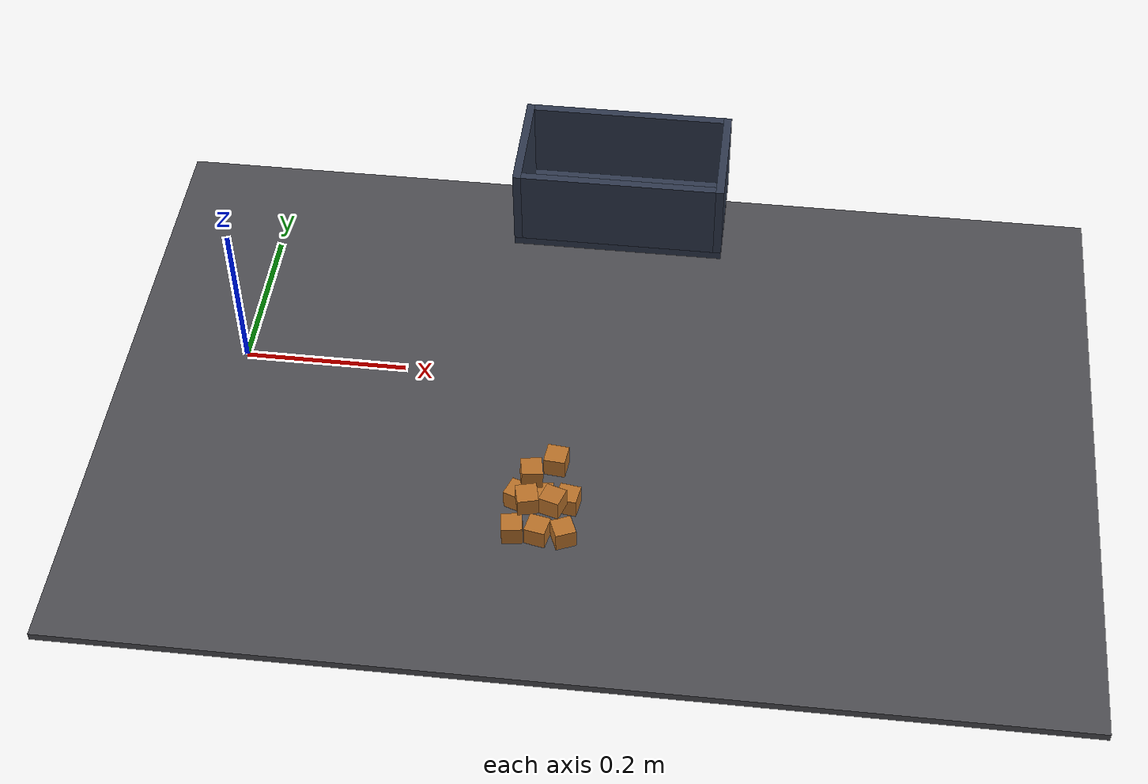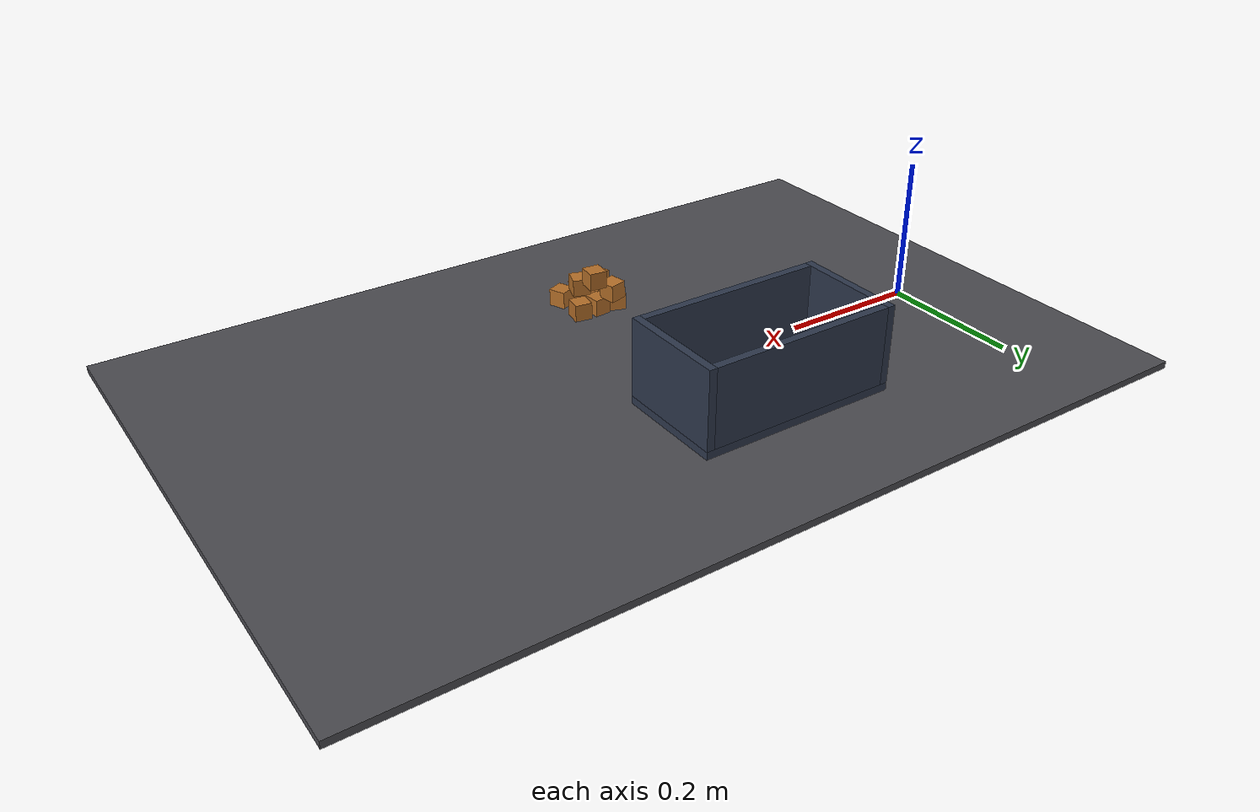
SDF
<?xml version="1.0"?>
<sdf version="1.8">
  <world name="a0">
    <plugin filename="ignition-gazebo-physics-system"
            name="ignition::gazebo::systems::Physics"/>
    <plugin filename="ignition-gazebo-user-commands-system"
            name="ignition::gazebo::systems::UserCommands"/>
    <plugin filename="ignition-gazebo-scene-broadcaster-system"
            name="ignition::gazebo::systems::SceneBroadcaster"/>

    <gravity>0 0 -9.81</gravity>
    <physics name="default_physics" type="ode">
      <max_step_size>0.001</max_step_size>
      <real_time_factor>1.0</real_time_factor>
      <real_time_update_rate>1000</real_time_update_rate>
    </physics>

    <scene>
      <ambient>0.6 0.6 0.6 1</ambient>
      <background>0.12 0.12 0.14 1</background>
      <shadows>false</shadows>
    </scene>

    <light name="sun" type="directional">
      <pose>0 0 3 0 0 0</pose>
      <cast_shadows>false</cast_shadows>
      <diffuse>0.8 0.8 0.8 1</diffuse>
      <specular>0.2 0.2 0.2 1</specular>
      <direction>-0.5 0.1 -1</direction>
    </light>

    <model name="pick_support">
      <static>true</static>
      <link name="support_link">
        <collision name="support_collision">
          <geometry>
            <plane>
              <normal>0 0 1</normal>
              <size>2 2</size>
            </plane>
          </geometry>
          <surface>
            <friction>
              <ode><mu>0.8</mu><mu2>0.8</mu2></ode>
            </friction>
          </surface>
        </collision>
        <visual name="support_visual">
          <geometry>
            <box><size>1.2 0.8 0.01</size></box>
          </geometry>
          <pose>0.45 -0.05 -0.005 0 0 0</pose>
          <material>
            <ambient>0.25 0.25 0.27 1</ambient>
            <diffuse>0.3 0.3 0.32 1</diffuse>
          </material>
        </visual>
      </link>
    </model>

    <model name="target_bin_physics">
      <static>true</static>
      <link name="bin_link">
        <collision name="floor">
          <pose>0.45 0.22 0.09 0 0 0</pose>
          <geometry><box><size>0.26 0.14 0.01</size></box></geometry>
          <surface><friction><ode><mu>0.7</mu><mu2>0.7</mu2></ode></friction></surface>
        </collision>
        <collision name="wall_x_minus">
          <pose>0.325 0.22 0.145 0 0 0</pose>
          <geometry><box><size>0.01 0.14 0.10</size></box></geometry>
        </collision>
        <collision name="wall_x_plus">
          <pose>0.575 0.22 0.145 0 0 0</pose>
          <geometry><box><size>0.01 0.14 0.10</size></box></geometry>
        </collision>
        <collision name="wall_y_minus">
          <pose>0.45 0.155 0.145 0 0 0</pose>
          <geometry><box><size>0.24 0.01 0.10</size></box></geometry>
        </collision>
        <collision name="wall_y_plus">
          <pose>0.45 0.285 0.145 0 0 0</pose>
          <geometry><box><size>0.24 0.01 0.10</size></box></geometry>
        </collision>
        <visual name="bin_floor_visual">
          <pose>0.45 0.22 0.09 0 0 0</pose>
          <geometry><box><size>0.26 0.14 0.01</size></box></geometry>
          <material><diffuse>0.18 0.22 0.30 1</diffuse></material>
        </visual>
        <visual name="wall_x_minus_visual">
          <pose>0.325 0.22 0.145 0 0 0</pose>
          <geometry><box><size>0.01 0.14 0.10</size></box></geometry>
          <material><diffuse>0.18 0.22 0.30 1</diffuse></material>
        </visual>
        <visual name="wall_x_plus_visual">
          <pose>0.575 0.22 0.145 0 0 0</pose>
          <geometry><box><size>0.01 0.14 0.10</size></box></geometry>
          <material><diffuse>0.18 0.22 0.30 1</diffuse></material>
        </visual>
        <visual name="wall_y_minus_visual">
          <pose>0.45 0.155 0.145 0 0 0</pose>
          <geometry><box><size>0.24 0.01 0.10</size></box></geometry>
          <material><diffuse>0.18 0.22 0.30 1</diffuse></material>
        </visual>
        <visual name="wall_y_plus_visual">
          <pose>0.45 0.285 0.145 0 0 0</pose>
          <geometry><box><size>0.24 0.01 0.10</size></box></geometry>
          <material><diffuse>0.18 0.22 0.30 1</diffuse></material>
        </visual>
      </link>
    </model>

    <model name="part_00">
      <pose>0.37 -0.25 0.0128 0 0 0.15</pose>
      <link name="link">
        <inertial><mass>0.020</mass><inertia><ixx>2.083333333e-6</ixx><iyy>2.083333333e-6</iyy><izz>2.083333333e-6</izz><ixy>0</ixy><ixz>0</ixz><iyz>0</iyz></inertia></inertial>
        <collision name="collision"><geometry><box><size>0.025 0.025 0.025</size></box></geometry><surface><friction><ode><mu>0.65</mu><mu2>0.65</mu2></ode></friction><contact><ode><kp>100000</kp><kd>1</kd><max_vel>0.05</max_vel><min_depth>0.0001</min_depth></ode></contact></surface></collision>
        <visual name="visual"><geometry><box><size>0.025 0.025 0.025</size></box></geometry><material><diffuse>0.72 0.44 0.16 1</diffuse></material></visual>
      </link>
    </model>
    <model name="part_01">
      <pose>0.40 -0.25 0.0128 0 0 -0.20</pose>
      <link name="link">
        <inertial><mass>0.020</mass><inertia><ixx>2.083333333e-6</ixx><iyy>2.083333333e-6</iyy><izz>2.083333333e-6</izz><ixy>0</ixy><ixz>0</ixz><iyz>0</iyz></inertia></inertial>
        <collision name="collision"><geometry><box><size>0.025 0.025 0.025</size></box></geometry><surface><friction><ode><mu>0.65</mu><mu2>0.65</mu2></ode></friction><contact><ode><kp>100000</kp><kd>1</kd><max_vel>0.05</max_vel><min_depth>0.0001</min_depth></ode></contact></surface></collision>
        <visual name="visual"><geometry><box><size>0.025 0.025 0.025</size></box></geometry><material><diffuse>0.72 0.44 0.16 1</diffuse></material></visual>
      </link>
    </model>
    <model name="part_02">
      <pose>0.43 -0.25 0.0128 0 0 0.40</pose>
      <link name="link">
        <inertial><mass>0.020</mass><inertia><ixx>2.083333333e-6</ixx><iyy>2.083333333e-6</iyy><izz>2.083333333e-6</izz><ixy>0</ixy><ixz>0</ixz><iyz>0</iyz></inertia></inertial>
        <collision name="collision"><geometry><box><size>0.025 0.025 0.025</size></box></geometry><surface><friction><ode><mu>0.65</mu><mu2>0.65</mu2></ode></friction><contact><ode><kp>100000</kp><kd>1</kd><max_vel>0.05</max_vel><min_depth>0.0001</min_depth></ode></contact></surface></collision>
        <visual name="visual"><geometry><box><size>0.025 0.025 0.025</size></box></geometry><material><diffuse>0.72 0.44 0.16 1</diffuse></material></visual>
      </link>
    </model>
    <model name="part_03">
      <pose>0.37 -0.20 0.0128 0 0 -0.35</pose>
      <link name="link">
        <inertial><mass>0.020</mass><inertia><ixx>2.083333333e-6</ixx><iyy>2.083333333e-6</iyy><izz>2.083333333e-6</izz><ixy>0</ixy><ixz>0</ixz><iyz>0</iyz></inertia></inertial>
        <collision name="collision"><geometry><box><size>0.025 0.025 0.025</size></box></geometry><surface><friction><ode><mu>0.65</mu><mu2>0.65</mu2></ode></friction><contact><ode><kp>100000</kp><kd>1</kd><max_vel>0.05</max_vel><min_depth>0.0001</min_depth></ode></contact></surface></collision>
        <visual name="visual"><geometry><box><size>0.025 0.025 0.025</size></box></geometry><material><diffuse>0.72 0.44 0.16 1</diffuse></material></visual>
      </link>
    </model>
    <model name="part_04">
      <pose>0.40 -0.20 0.0128 0 0 0.10</pose>
      <link name="link">
        <inertial><mass>0.020</mass><inertia><ixx>2.083333333e-6</ixx><iyy>2.083333333e-6</iyy><izz>2.083333333e-6</izz><ixy>0</ixy><ixz>0</ixz><iyz>0</iyz></inertia></inertial>
        <collision name="collision"><geometry><box><size>0.025 0.025 0.025</size></box></geometry><surface><friction><ode><mu>0.65</mu><mu2>0.65</mu2></ode></friction><contact><ode><kp>100000</kp><kd>1</kd><max_vel>0.05</max_vel><min_depth>0.0001</min_depth></ode></contact></surface></collision>
        <visual name="visual"><geometry><box><size>0.025 0.025 0.025</size></box></geometry><material><diffuse>0.72 0.44 0.16 1</diffuse></material></visual>
      </link>
    </model>
    <model name="part_05">
      <pose>0.43 -0.20 0.0128 0 0 -0.15</pose>
      <link name="link">
        <inertial><mass>0.020</mass><inertia><ixx>2.083333333e-6</ixx><iyy>2.083333333e-6</iyy><izz>2.083333333e-6</izz><ixy>0</ixy><ixz>0</ixz><iyz>0</iyz></inertia></inertial>
        <collision name="collision"><geometry><box><size>0.025 0.025 0.025</size></box></geometry><surface><friction><ode><mu>0.65</mu><mu2>0.65</mu2></ode></friction><contact><ode><kp>100000</kp><kd>1</kd><max_vel>0.05</max_vel><min_depth>0.0001</min_depth></ode></contact></surface></collision>
        <visual name="visual"><geometry><box><size>0.025 0.025 0.025</size></box></geometry><material><diffuse>0.72 0.44 0.16 1</diffuse></material></visual>
      </link>
    </model>
    <model name="part_06">
      <pose>0.385 -0.225 0.038 0.05 0 0.25</pose>
      <link name="link">
        <inertial><mass>0.020</mass><inertia><ixx>2.083333333e-6</ixx><iyy>2.083333333e-6</iyy><izz>2.083333333e-6</izz><ixy>0</ixy><ixz>0</ixz><iyz>0</iyz></inertia></inertial>
        <collision name="collision"><geometry><box><size>0.025 0.025 0.025</size></box></geometry><surface><friction><ode><mu>0.65</mu><mu2>0.65</mu2></ode></friction><contact><ode><kp>100000</kp><kd>1</kd><max_vel>0.05</max_vel><min_depth>0.0001</min_depth></ode></contact></surface></collision>
        <visual name="visual"><geometry><box><size>0.025 0.025 0.025</size></box></geometry><material><diffuse>0.72 0.44 0.16 1</diffuse></material></visual>
      </link>
    </model>
    <model name="part_07">
      <pose>0.415 -0.225 0.038 -0.04 0 -0.30</pose>
      <link name="link">
        <inertial><mass>0.020</mass><inertia><ixx>2.083333333e-6</ixx><iyy>2.083333333e-6</iyy><izz>2.083333333e-6</izz><ixy>0</ixy><ixz>0</ixz><iyz>0</iyz></inertia></inertial>
        <collision name="collision"><geometry><box><size>0.025 0.025 0.025</size></box></geometry><surface><friction><ode><mu>0.65</mu><mu2>0.65</mu2></ode></friction><contact><ode><kp>100000</kp><kd>1</kd><max_vel>0.05</max_vel><min_depth>0.0001</min_depth></ode></contact></surface></collision>
        <visual name="visual"><geometry><box><size>0.025 0.025 0.025</size></box></geometry><material><diffuse>0.72 0.44 0.16 1</diffuse></material></visual>
      </link>
    </model>
    <model name="part_08">
      <pose>0.385 -0.185 0.038 0 0.05 0.20</pose>
      <link name="link">
        <inertial><mass>0.020</mass><inertia><ixx>2.083333333e-6</ixx><iyy>2.083333333e-6</iyy><izz>2.083333333e-6</izz><ixy>0</ixy><ixz>0</ixz><iyz>0</iyz></inertia></inertial>
        <collision name="collision"><geometry><box><size>0.025 0.025 0.025</size></box></geometry><surface><friction><ode><mu>0.65</mu><mu2>0.65</mu2></ode></friction><contact><ode><kp>100000</kp><kd>1</kd><max_vel>0.05</max_vel><min_depth>0.0001</min_depth></ode></contact></surface></collision>
        <visual name="visual"><geometry><box><size>0.025 0.025 0.025</size></box></geometry><material><diffuse>0.72 0.44 0.16 1</diffuse></material></visual>
      </link>
    </model>
    <model name="part_09">
      <pose>0.415 -0.185 0.064 0 0 -0.10</pose>
      <link name="link">
        <inertial><mass>0.020</mass><inertia><ixx>2.083333333e-6</ixx><iyy>2.083333333e-6</iyy><izz>2.083333333e-6</izz><ixy>0</ixy><ixz>0</ixz><iyz>0</iyz></inertia></inertial>
        <collision name="collision"><geometry><box><size>0.025 0.025 0.025</size></box></geometry><surface><friction><ode><mu>0.65</mu><mu2>0.65</mu2></ode></friction><contact><ode><kp>100000</kp><kd>1</kd><max_vel>0.05</max_vel><min_depth>0.0001</min_depth></ode></contact></surface></collision>
        <visual name="visual"><geometry><box><size>0.025 0.025 0.025</size></box></geometry><material><diffuse>0.72 0.44 0.16 1</diffuse></material></visual>
      </link>
    </model>
  </world>
</sdf>
